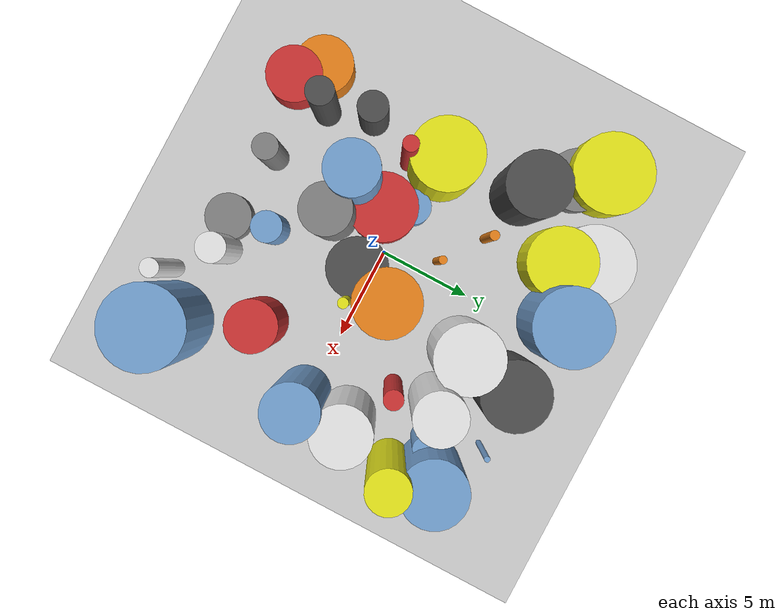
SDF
<?xml version='1.0'?>
<sdf version='1.6'>
  <world name='default'>
    <!-- Sun light -->
    <light name='sun' type='directional'>
      <cast_shadows>1</cast_shadows>
      <pose>0 0 10 0 0 0</pose>
      <diffuse>0.8 0.8 0.8 1</diffuse>
      <specular>0.2 0.2 0.2 1</specular>
      <attenuation>
        <range>1000</range>
        <constant>0.9</constant>
        <linear>0.01</linear>
        <quadratic>0.001</quadratic>
      </attenuation>
      <direction>-0.5 0.1 -0.9</direction>
    </light>

    <!-- Ground plane -->
    <model name='ground_plane'>
      <static>1</static>
      <link name='link'>
        <collision name='collision'>
          <geometry>
            <plane>
              <normal>0 0 1</normal>
              <size>100 100</size>
            </plane>
          </geometry>
          <surface>
            <contact>
              <collide_bitmask>65535</collide_bitmask>
              <ode/>
            </contact>
            <friction>
              <ode>
                <mu>100</mu>
                <mu2>50</mu2>
              </ode>
              <torsional><ode/></torsional>
            </friction>
            <bounce/>
          </surface>
          <max_contacts>10</max_contacts>
        </collision>
        <visual name='visual'>
          <cast_shadows>0</cast_shadows>
          <geometry>
            <plane>
              <normal>0 0 1</normal>
              <size>100 100</size>
            </plane>
          </geometry>
          <material>
            <script>
              <uri>file://media/materials/scripts/gazebo.material</uri>
              <n>Gazebo/Grey</n>
            </script>
          </material>
        </visual>
      </link>
    </model>

    <!-- Environment -->
    <magnetic_field>6e-06 2.3e-05 -4.2e-05</magnetic_field>
    <atmosphere type='adiabatic'/>
    <physics name='default_physics' default='0' type='ode'>
      <gravity>0 0 -9.8</gravity>
      <max_step_size>0.004</max_step_size>
      <real_time_factor>1</real_time_factor>
      <real_time_update_rate>250</real_time_update_rate>
    </physics>
    <scene>
      <ambient>0.4 0.4 0.4 1</ambient>
      <background>0.7 0.7 0.7 1</background>
      <shadows>1</shadows>
    </scene>
    <wind/>
    <spherical_coordinates>
      <surface_model>EARTH_WGS84</surface_model>
      <latitude_deg>0</latitude_deg>
      <longitude_deg>0</longitude_deg>
      <elevation>0</elevation>
      <heading_deg>0</heading_deg>
    </spherical_coordinates>

    <!-- ============ OBSTACLES (39) ============ -->
    <model name='obs_00'>
      <static>1</static>
      <link name='link'>
        <visual name='visual'>
          <geometry>
            <cylinder>
              <radius>0.7337</radius>
              <length>6.0355</length>
            </cylinder>
          </geometry>
          <material>
            <script>
              <n>Gazebo/DarkGrey</n>
              <uri>file://media/materials/scripts/gazebo.material</uri>
            </script>
            <ambient>0.3 0.3 0.3 1</ambient>
          </material>
        </visual>
        <collision name='collision'>
          <geometry>
            <cylinder>
              <radius>0.7337</radius>
              <length>6.0355</length>
            </cylinder>
          </geometry>
          <max_contacts>10</max_contacts>
          <surface>
            <contact><ode/></contact>
            <bounce/>
            <friction>
              <ode><mu>1</mu><mu2>1</mu2></ode>
              <torsional><ode/></torsional>
            </friction>
          </surface>
        </collision>
      </link>
      <pose>-5.2683 -6.2659 3.0178 0 0 2.7067</pose>
    </model>

    <model name='obs_01'>
      <static>1</static>
      <link name='link'>
        <visual name='visual'>
          <geometry>
            <cylinder>
              <radius>0.2784</radius>
              <length>5.8486</length>
            </cylinder>
          </geometry>
          <material>
            <script>
              <n>Gazebo/Yellow</n>
              <uri>file://media/materials/scripts/gazebo.material</uri>
            </script>
            <ambient>0.9 0.9 0.1 1</ambient>
          </material>
        </visual>
        <collision name='collision'>
          <geometry>
            <cylinder>
              <radius>0.2784</radius>
              <length>5.8486</length>
            </cylinder>
          </geometry>
          <max_contacts>10</max_contacts>
          <surface>
            <contact><ode/></contact>
            <bounce/>
            <friction>
              <ode><mu>1</mu><mu2>1</mu2></ode>
              <torsional><ode/></torsional>
            </friction>
          </surface>
        </collision>
      </link>
      <pose>3.1444 -0.5355 2.9243 0 0 3.0232</pose>
    </model>

    <model name='obs_02'>
      <static>1</static>
      <link name='link'>
        <visual name='visual'>
          <geometry>
            <cylinder>
              <radius>0.6801</radius>
              <length>4.6872</length>
            </cylinder>
          </geometry>
          <material>
            <script>
              <n>Gazebo/Grey</n>
              <uri>file://media/materials/scripts/gazebo.material</uri>
            </script>
            <ambient>0.5 0.5 0.5 1</ambient>
          </material>
        </visual>
        <collision name='collision'>
          <geometry>
            <cylinder>
              <radius>0.6801</radius>
              <length>4.6872</length>
            </cylinder>
          </geometry>
          <max_contacts>10</max_contacts>
          <surface>
            <contact><ode/></contact>
            <bounce/>
            <friction>
              <ode><mu>1</mu><mu2>1</mu2></ode>
              <torsional><ode/></torsional>
            </friction>
          </surface>
        </collision>
      </link>
      <pose>-1.7911 -7.5647 2.3436 0 0 0.7353</pose>
    </model>

    <model name='obs_03'>
      <static>1</static>
      <link name='link'>
        <visual name='visual'>
          <geometry>
            <cylinder>
              <radius>1.1398</radius>
              <length>7.4576</length>
            </cylinder>
          </geometry>
          <material>
            <script>
              <n>Gazebo/Yellow</n>
              <uri>file://media/materials/scripts/gazebo.material</uri>
            </script>
            <ambient>0.9 0.9 0.1 1</ambient>
          </material>
        </visual>
        <collision name='collision'>
          <geometry>
            <cylinder>
              <radius>1.1398</radius>
              <length>7.4576</length>
            </cylinder>
          </geometry>
          <max_contacts>10</max_contacts>
          <surface>
            <contact><ode/></contact>
            <bounce/>
            <friction>
              <ode><mu>1</mu><mu2>1</mu2></ode>
              <torsional><ode/></torsional>
            </friction>
          </surface>
        </collision>
      </link>
      <pose>9.7816 5.4586 3.7288 0 0 0.8431</pose>
    </model>

    <model name='obs_04'>
      <static>1</static>
      <link name='link'>
        <visual name='visual'>
          <geometry>
            <cylinder>
              <radius>0.1537</radius>
              <length>4.3478</length>
            </cylinder>
          </geometry>
          <material>
            <script>
              <n>Gazebo/Blue</n>
              <uri>file://media/materials/scripts/gazebo.material</uri>
            </script>
            <ambient>0.447 0.624 0.812 1</ambient>
          </material>
        </visual>
        <collision name='collision'>
          <geometry>
            <cylinder>
              <radius>0.1537</radius>
              <length>4.3478</length>
            </cylinder>
          </geometry>
          <max_contacts>10</max_contacts>
          <surface>
            <contact><ode/></contact>
            <bounce/>
            <friction>
              <ode><mu>1</mu><mu2>1</mu2></ode>
              <torsional><ode/></torsional>
            </friction>
          </surface>
        </collision>
      </link>
      <pose>6.6952 9.3565 2.1739 0 0 3.1303</pose>
    </model>

    <model name='obs_05'>
      <static>1</static>
      <link name='link'>
        <visual name='visual'>
          <geometry>
            <cylinder>
              <radius>1.7222</radius>
              <length>6.5273</length>
            </cylinder>
          </geometry>
          <material>
            <script>
              <n>Gazebo/Blue</n>
              <uri>file://media/materials/scripts/gazebo.material</uri>
            </script>
            <ambient>0.447 0.624 0.812 1</ambient>
          </material>
        </visual>
        <collision name='collision'>
          <geometry>
            <cylinder>
              <radius>1.7222</radius>
              <length>6.5273</length>
            </cylinder>
          </geometry>
          <max_contacts>10</max_contacts>
          <surface>
            <contact><ode/></contact>
            <bounce/>
            <friction>
              <ode><mu>1</mu><mu2>1</mu2></ode>
              <torsional><ode/></torsional>
            </friction>
          </surface>
        </collision>
      </link>
      <pose>9.0491 7.5343 3.2637 0 0 1.1561</pose>
    </model>

    <model name='obs_06'>
      <static>1</static>
      <link name='link'>
        <visual name='visual'>
          <geometry>
            <cylinder>
              <radius>1.6015</radius>
              <length>2.6330</length>
            </cylinder>
          </geometry>
          <material>
            <script>
              <n>Gazebo/Orange</n>
              <uri>file://media/materials/scripts/gazebo.material</uri>
            </script>
            <ambient>0.9 0.5 0.1 1</ambient>
          </material>
        </visual>
        <collision name='collision'>
          <geometry>
            <cylinder>
              <radius>1.6015</radius>
              <length>2.6330</length>
            </cylinder>
          </geometry>
          <max_contacts>10</max_contacts>
          <surface>
            <contact><ode/></contact>
            <bounce/>
            <friction>
              <ode><mu>1</mu><mu2>1</mu2></ode>
              <torsional><ode/></torsional>
            </friction>
          </surface>
        </collision>
      </link>
      <pose>-2.7695 9.6295 1.3165 0 0 1.9627</pose>
    </model>

    <model name='obs_07'>
      <static>1</static>
      <link name='link'>
        <visual name='visual'>
          <geometry>
            <cylinder>
              <radius>2.1067</radius>
              <length>2.9165</length>
            </cylinder>
          </geometry>
          <material>
            <script>
              <n>Gazebo/White</n>
              <uri>file://media/materials/scripts/gazebo.material</uri>
            </script>
            <ambient>0.9 0.9 0.9 1</ambient>
          </material>
        </visual>
        <collision name='collision'>
          <geometry>
            <cylinder>
              <radius>2.1067</radius>
              <length>2.9165</length>
            </cylinder>
          </geometry>
          <max_contacts>10</max_contacts>
          <surface>
            <contact><ode/></contact>
            <bounce/>
            <friction>
              <ode><mu>1</mu><mu2>1</mu2></ode>
              <torsional><ode/></torsional>
            </friction>
          </surface>
        </collision>
      </link>
      <pose>-4.4722 9.8789 1.4582 0 0 1.3938</pose>
    </model>

    <model name='obs_08'>
      <static>1</static>
      <link name='link'>
        <visual name='visual'>
          <geometry>
            <cylinder>
              <radius>0.2540</radius>
              <length>4.8624</length>
            </cylinder>
          </geometry>
          <material>
            <script>
              <n>Gazebo/Orange</n>
              <uri>file://media/materials/scripts/gazebo.material</uri>
            </script>
            <ambient>0.9 0.5 0.1 1</ambient>
          </material>
        </visual>
        <collision name='collision'>
          <geometry>
            <cylinder>
              <radius>0.2540</radius>
              <length>4.8624</length>
            </cylinder>
          </geometry>
          <max_contacts>10</max_contacts>
          <surface>
            <contact><ode/></contact>
            <bounce/>
            <friction>
              <ode><mu>1</mu><mu2>1</mu2></ode>
              <torsional><ode/></torsional>
            </friction>
          </surface>
        </collision>
      </link>
      <pose>-3.2155 4.4386 2.4312 0 0 0.3030</pose>
    </model>

    <model name='obs_09'>
      <static>1</static>
      <link name='link'>
        <visual name='visual'>
          <geometry>
            <cylinder>
              <radius>0.7888</radius>
              <length>4.9309</length>
            </cylinder>
          </geometry>
          <material>
            <script>
              <n>Gazebo/White</n>
              <uri>file://media/materials/scripts/gazebo.material</uri>
            </script>
            <ambient>0.9 0.9 0.9 1</ambient>
          </material>
        </visual>
        <collision name='collision'>
          <geometry>
            <cylinder>
              <radius>0.7888</radius>
              <length>4.9309</length>
            </cylinder>
          </geometry>
          <max_contacts>10</max_contacts>
          <surface>
            <contact><ode/></contact>
            <bounce/>
            <friction>
              <ode><mu>1</mu><mu2>1</mu2></ode>
              <torsional><ode/></torsional>
            </friction>
          </surface>
        </collision>
      </link>
      <pose>3.8336 -7.5626 2.4654 0 0 1.7327</pose>
    </model>

    <model name='obs_10'>
      <static>1</static>
      <link name='link'>
        <visual name='visual'>
          <geometry>
            <cylinder>
              <radius>0.8265</radius>
              <length>3.5689</length>
            </cylinder>
          </geometry>
          <material>
            <script>
              <n>Gazebo/Blue</n>
              <uri>file://media/materials/scripts/gazebo.material</uri>
            </script>
            <ambient>0.447 0.624 0.812 1</ambient>
          </material>
        </visual>
        <collision name='collision'>
          <geometry>
            <cylinder>
              <radius>0.8265</radius>
              <length>3.5689</length>
            </cylinder>
          </geometry>
          <max_contacts>10</max_contacts>
          <surface>
            <contact><ode/></contact>
            <bounce/>
            <friction>
              <ode><mu>1</mu><mu2>1</mu2></ode>
              <torsional><ode/></torsional>
            </friction>
          </surface>
        </collision>
      </link>
      <pose>1.6848 -5.8166 1.7844 0 0 0.2465</pose>
    </model>

    <model name='obs_11'>
      <static>1</static>
      <link name='link'>
        <visual name='visual'>
          <geometry>
            <cylinder>
              <radius>2.1743</radius>
              <length>6.5973</length>
            </cylinder>
          </geometry>
          <material>
            <script>
              <n>Gazebo/Blue</n>
              <uri>file://media/materials/scripts/gazebo.material</uri>
            </script>
            <ambient>0.447 0.624 0.812 1</ambient>
          </material>
        </visual>
        <collision name='collision'>
          <geometry>
            <cylinder>
              <radius>2.1743</radius>
              <length>6.5973</length>
            </cylinder>
          </geometry>
          <max_contacts>10</max_contacts>
          <surface>
            <contact><ode/></contact>
            <bounce/>
            <friction>
              <ode><mu>1</mu><mu2>1</mu2></ode>
              <torsional><ode/></torsional>
            </friction>
          </surface>
        </collision>
      </link>
      <pose>8.5865 -8.3595 3.2986 0 0 0.3864</pose>
    </model>

    <model name='obs_12'>
      <static>1</static>
      <link name='link'>
        <visual name='visual'>
          <geometry>
            <cylinder>
              <radius>1.4510</radius>
              <length>7.4970</length>
            </cylinder>
          </geometry>
          <material>
            <script>
              <n>Gazebo/Blue</n>
              <uri>file://media/materials/scripts/gazebo.material</uri>
            </script>
            <ambient>0.447 0.624 0.812 1</ambient>
          </material>
        </visual>
        <collision name='collision'>
          <geometry>
            <cylinder>
              <radius>1.4510</radius>
              <length>7.4970</length>
            </cylinder>
          </geometry>
          <max_contacts>10</max_contacts>
          <surface>
            <contact><ode/></contact>
            <bounce/>
            <friction>
              <ode><mu>1</mu><mu2>1</mu2></ode>
              <torsional><ode/></torsional>
            </friction>
          </surface>
        </collision>
      </link>
      <pose>8.6717 -0.2831 3.7485 0 0 2.2102</pose>
    </model>

    <model name='obs_13'>
      <static>1</static>
      <link name='link'>
        <visual name='visual'>
          <geometry>
            <cylinder>
              <radius>1.4074</radius>
              <length>6.9707</length>
            </cylinder>
          </geometry>
          <material>
            <script>
              <n>Gazebo/Blue</n>
              <uri>file://media/materials/scripts/gazebo.material</uri>
            </script>
            <ambient>0.447 0.624 0.812 1</ambient>
          </material>
        </visual>
        <collision name='collision'>
          <geometry>
            <cylinder>
              <radius>1.4074</radius>
              <length>6.9707</length>
            </cylinder>
          </geometry>
          <max_contacts>10</max_contacts>
          <surface>
            <contact><ode/></contact>
            <bounce/>
            <friction>
              <ode><mu>1</mu><mu2>1</mu2></ode>
              <torsional><ode/></torsional>
            </friction>
          </surface>
        </collision>
      </link>
      <pose>-2.6753 -3.1050 3.4854 0 0 0.6394</pose>
    </model>

    <model name='obs_14'>
      <static>1</static>
      <link name='link'>
        <visual name='visual'>
          <geometry>
            <cylinder>
              <radius>1.7676</radius>
              <length>6.6078</length>
            </cylinder>
          </geometry>
          <material>
            <script>
              <n>Gazebo/White</n>
              <uri>file://media/materials/scripts/gazebo.material</uri>
            </script>
            <ambient>0.9 0.9 0.9 1</ambient>
          </material>
        </visual>
        <collision name='collision'>
          <geometry>
            <cylinder>
              <radius>1.7676</radius>
              <length>6.6078</length>
            </cylinder>
          </geometry>
          <max_contacts>10</max_contacts>
          <surface>
            <contact><ode/></contact>
            <bounce/>
            <friction>
              <ode><mu>1</mu><mu2>1</mu2></ode>
              <torsional><ode/></torsional>
            </friction>
          </surface>
        </collision>
      </link>
      <pose>2.6477 6.0166 3.3039 0 0 0.5030</pose>
    </model>

    <model name='obs_15'>
      <static>1</static>
      <link name='link'>
        <visual name='visual'>
          <geometry>
            <cylinder>
              <radius>2.1623</radius>
              <length>2.6619</length>
            </cylinder>
          </geometry>
          <material>
            <script>
              <n>Gazebo/Yellow</n>
              <uri>file://media/materials/scripts/gazebo.material</uri>
            </script>
            <ambient>0.9 0.9 0.1 1</ambient>
          </material>
        </visual>
        <collision name='collision'>
          <geometry>
            <cylinder>
              <radius>2.1623</radius>
              <length>2.6619</length>
            </cylinder>
          </geometry>
          <max_contacts>10</max_contacts>
          <surface>
            <contact><ode/></contact>
            <bounce/>
            <friction>
              <ode><mu>1</mu><mu2>1</mu2></ode>
              <torsional><ode/></torsional>
            </friction>
          </surface>
        </collision>
      </link>
      <pose>-9.1219 8.5554 1.3310 0 0 1.3248</pose>
    </model>

    <model name='obs_16'>
      <static>1</static>
      <link name='link'>
        <visual name='visual'>
          <geometry>
            <cylinder>
              <radius>1.3356</radius>
              <length>7.8458</length>
            </cylinder>
          </geometry>
          <material>
            <script>
              <n>Gazebo/White</n>
              <uri>file://media/materials/scripts/gazebo.material</uri>
            </script>
            <ambient>0.9 0.9 0.9 1</ambient>
          </material>
        </visual>
        <collision name='collision'>
          <geometry>
            <cylinder>
              <radius>1.3356</radius>
              <length>7.8458</length>
            </cylinder>
          </geometry>
          <max_contacts>10</max_contacts>
          <surface>
            <contact><ode/></contact>
            <bounce/>
            <friction>
              <ode><mu>1</mu><mu2>1</mu2></ode>
              <torsional><ode/></torsional>
            </friction>
          </surface>
        </collision>
      </link>
      <pose>5.6250 5.9732 3.9229 0 0 1.5834</pose>
    </model>

    <model name='obs_17'>
      <static>1</static>
      <link name='link'>
        <visual name='visual'>
          <geometry>
            <cylinder>
              <radius>1.6929</radius>
              <length>1.3691</length>
            </cylinder>
          </geometry>
          <material>
            <script>
              <n>Gazebo/Grey</n>
              <uri>file://media/materials/scripts/gazebo.material</uri>
            </script>
            <ambient>0.5 0.5 0.5 1</ambient>
          </material>
        </visual>
        <collision name='collision'>
          <geometry>
            <cylinder>
              <radius>1.6929</radius>
              <length>1.3691</length>
            </cylinder>
          </geometry>
          <max_contacts>10</max_contacts>
          <surface>
            <contact><ode/></contact>
            <bounce/>
            <friction>
              <ode><mu>1</mu><mu2>1</mu2></ode>
              <torsional><ode/></torsional>
            </friction>
          </surface>
        </collision>
      </link>
      <pose>-8.1907 7.2563 0.6846 0 0 1.8540</pose>
    </model>

    <model name='obs_18'>
      <static>1</static>
      <link name='link'>
        <visual name='visual'>
          <geometry>
            <cylinder>
              <radius>1.8726</radius>
              <length>3.3443</length>
            </cylinder>
          </geometry>
          <material>
            <script>
              <n>Gazebo/Yellow</n>
              <uri>file://media/materials/scripts/gazebo.material</uri>
            </script>
            <ambient>0.9 0.9 0.1 1</ambient>
          </material>
        </visual>
        <collision name='collision'>
          <geometry>
            <cylinder>
              <radius>1.8726</radius>
              <length>3.3443</length>
            </cylinder>
          </geometry>
          <max_contacts>10</max_contacts>
          <surface>
            <contact><ode/></contact>
            <bounce/>
            <friction>
              <ode><mu>1</mu><mu2>1</mu2></ode>
              <torsional><ode/></torsional>
            </friction>
          </surface>
        </collision>
      </link>
      <pose>-3.7592 8.2665 1.6722 0 0 1.7623</pose>
    </model>

    <model name='obs_19'>
      <static>1</static>
      <link name='link'>
        <visual name='visual'>
          <geometry>
            <cylinder>
              <radius>0.5049</radius>
              <length>6.4687</length>
            </cylinder>
          </geometry>
          <material>
            <script>
              <n>Gazebo/Red</n>
              <uri>file://media/materials/scripts/gazebo.material</uri>
            </script>
            <ambient>0.8 0.2 0.2 1</ambient>
          </material>
        </visual>
        <collision name='collision'>
          <geometry>
            <cylinder>
              <radius>0.5049</radius>
              <length>6.4687</length>
            </cylinder>
          </geometry>
          <max_contacts>10</max_contacts>
          <surface>
            <contact><ode/></contact>
            <bounce/>
            <friction>
              <ode><mu>1</mu><mu2>1</mu2></ode>
              <torsional><ode/></torsional>
            </friction>
          </surface>
        </collision>
      </link>
      <pose>6.0280 3.7419 3.2343 0 0 0.4637</pose>
    </model>

    <model name='obs_20'>
      <static>1</static>
      <link name='link'>
        <visual name='visual'>
          <geometry>
            <cylinder>
              <radius>0.8102</radius>
              <length>4.4297</length>
            </cylinder>
          </geometry>
          <material>
            <script>
              <n>Gazebo/DarkGrey</n>
              <uri>file://media/materials/scripts/gazebo.material</uri>
            </script>
            <ambient>0.3 0.3 0.3 1</ambient>
          </material>
        </visual>
        <collision name='collision'>
          <geometry>
            <cylinder>
              <radius>0.8102</radius>
              <length>4.4297</length>
            </cylinder>
          </geometry>
          <max_contacts>10</max_contacts>
          <surface>
            <contact><ode/></contact>
            <bounce/>
            <friction>
              <ode><mu>1</mu><mu2>1</mu2></ode>
              <torsional><ode/></torsional>
            </friction>
          </surface>
        </collision>
      </link>
      <pose>-6.0554 -3.8326 2.2148 0 0 1.5186</pose>
    </model>

    <model name='obs_21'>
      <static>1</static>
      <link name='link'>
        <visual name='visual'>
          <geometry>
            <cylinder>
              <radius>1.5041</radius>
              <length>2.1348</length>
            </cylinder>
          </geometry>
          <material>
            <script>
              <n>Gazebo/Red</n>
              <uri>file://media/materials/scripts/gazebo.material</uri>
            </script>
            <ambient>0.8 0.2 0.2 1</ambient>
          </material>
        </visual>
        <collision name='collision'>
          <geometry>
            <cylinder>
              <radius>1.5041</radius>
              <length>2.1348</length>
            </cylinder>
          </geometry>
          <max_contacts>10</max_contacts>
          <surface>
            <contact><ode/></contact>
            <bounce/>
            <friction>
              <ode><mu>1</mu><mu2>1</mu2></ode>
              <torsional><ode/></torsional>
            </friction>
          </surface>
        </collision>
      </link>
      <pose>-5.9799 -8.4881 1.0674 0 0 0.6395</pose>
    </model>

    <model name='obs_22'>
      <static>1</static>
      <link name='link'>
        <visual name='visual'>
          <geometry>
            <cylinder>
              <radius>1.6952</radius>
              <length>7.2968</length>
            </cylinder>
          </geometry>
          <material>
            <script>
              <n>Gazebo/Orange</n>
              <uri>file://media/materials/scripts/gazebo.material</uri>
            </script>
            <ambient>0.9 0.5 0.1 1</ambient>
          </material>
        </visual>
        <collision name='collision'>
          <geometry>
            <cylinder>
              <radius>1.6952</radius>
              <length>7.2968</length>
            </cylinder>
          </geometry>
          <max_contacts>10</max_contacts>
          <surface>
            <contact><ode/></contact>
            <bounce/>
            <friction>
              <ode><mu>1</mu><mu2>1</mu2></ode>
              <torsional><ode/></torsional>
            </friction>
          </surface>
        </collision>
      </link>
      <pose>2.1225 1.3176 3.6484 0 0 0.4976</pose>
    </model>

    <model name='obs_23'>
      <static>1</static>
      <link name='link'>
        <visual name='visual'>
          <geometry>
            <cylinder>
              <radius>2.0358</radius>
              <length>5.3733</length>
            </cylinder>
          </geometry>
          <material>
            <script>
              <n>Gazebo/Blue</n>
              <uri>file://media/materials/scripts/gazebo.material</uri>
            </script>
            <ambient>0.447 0.624 0.812 1</ambient>
          </material>
        </visual>
        <collision name='collision'>
          <geometry>
            <cylinder>
              <radius>2.0358</radius>
              <length>5.3733</length>
            </cylinder>
          </geometry>
          <max_contacts>10</max_contacts>
          <surface>
            <contact><ode/></contact>
            <bounce/>
            <friction>
              <ode><mu>1</mu><mu2>1</mu2></ode>
              <torsional><ode/></torsional>
            </friction>
          </surface>
        </collision>
      </link>
      <pose>-1.0223 9.8680 2.6867 0 0 2.4724</pose>
    </model>

    <model name='obs_24'>
      <static>1</static>
      <link name='link'>
        <visual name='visual'>
          <geometry>
            <cylinder>
              <radius>1.5519</radius>
              <length>6.8905</length>
            </cylinder>
          </geometry>
          <material>
            <script>
              <n>Gazebo/White</n>
              <uri>file://media/materials/scripts/gazebo.material</uri>
            </script>
            <ambient>0.9 0.9 0.9 1</ambient>
          </material>
        </visual>
        <collision name='collision'>
          <geometry>
            <cylinder>
              <radius>1.5519</radius>
              <length>6.8905</length>
            </cylinder>
          </geometry>
          <max_contacts>10</max_contacts>
          <surface>
            <contact><ode/></contact>
            <bounce/>
            <friction>
              <ode><mu>1</mu><mu2>1</mu2></ode>
              <torsional><ode/></torsional>
            </friction>
          </surface>
        </collision>
      </link>
      <pose>8.6498 2.3346 3.4452 0 0 1.1219</pose>
    </model>

    <model name='obs_25'>
      <static>1</static>
      <link name='link'>
        <visual name='visual'>
          <geometry>
            <cylinder>
              <radius>0.2103</radius>
              <length>6.1343</length>
            </cylinder>
          </geometry>
          <material>
            <script>
              <n>Gazebo/Orange</n>
              <uri>file://media/materials/scripts/gazebo.material</uri>
            </script>
            <ambient>0.9 0.5 0.1 1</ambient>
          </material>
        </visual>
        <collision name='collision'>
          <geometry>
            <cylinder>
              <radius>0.2103</radius>
              <length>6.1343</length>
            </cylinder>
          </geometry>
          <max_contacts>10</max_contacts>
          <surface>
            <contact><ode/></contact>
            <bounce/>
            <friction>
              <ode><mu>1</mu><mu2>1</mu2></ode>
              <torsional><ode/></torsional>
            </friction>
          </surface>
        </collision>
      </link>
      <pose>-0.9133 2.7067 3.0672 0 0 1.3591</pose>
    </model>

    <model name='obs_26'>
      <static>1</static>
      <link name='link'>
        <visual name='visual'>
          <geometry>
            <cylinder>
              <radius>1.7996</radius>
              <length>5.4380</length>
            </cylinder>
          </geometry>
          <material>
            <script>
              <n>Gazebo/DarkGrey</n>
              <uri>file://media/materials/scripts/gazebo.material</uri>
            </script>
            <ambient>0.3 0.3 0.3 1</ambient>
          </material>
        </visual>
        <collision name='collision'>
          <geometry>
            <cylinder>
              <radius>1.7996</radius>
              <length>5.4380</length>
            </cylinder>
          </geometry>
          <max_contacts>10</max_contacts>
          <surface>
            <contact><ode/></contact>
            <bounce/>
            <friction>
              <ode><mu>1</mu><mu2>1</mu2></ode>
              <torsional><ode/></torsional>
            </friction>
          </surface>
        </collision>
      </link>
      <pose>3.2130 8.9735 2.7190 0 0 2.5231</pose>
    </model>

    <model name='obs_27'>
      <static>1</static>
      <link name='link'>
        <visual name='visual'>
          <geometry>
            <cylinder>
              <radius>1.8525</radius>
              <length>2.3236</length>
            </cylinder>
          </geometry>
          <material>
            <script>
              <n>Gazebo/Red</n>
              <uri>file://media/materials/scripts/gazebo.material</uri>
            </script>
            <ambient>0.8 0.2 0.2 1</ambient>
          </material>
        </visual>
        <collision name='collision'>
          <geometry>
            <cylinder>
              <radius>1.8525</radius>
              <length>2.3236</length>
            </cylinder>
          </geometry>
          <max_contacts>10</max_contacts>
          <surface>
            <contact><ode/></contact>
            <bounce/>
            <friction>
              <ode><mu>1</mu><mu2>1</mu2></ode>
              <torsional><ode/></torsional>
            </friction>
          </surface>
        </collision>
      </link>
      <pose>-2.0388 -1.1311 1.1618 0 0 1.2494</pose>
    </model>

    <model name='obs_28'>
      <static>1</static>
      <link name='link'>
        <visual name='visual'>
          <geometry>
            <cylinder>
              <radius>0.4009</radius>
              <length>7.7883</length>
            </cylinder>
          </geometry>
          <material>
            <script>
              <n>Gazebo/Red</n>
              <uri>file://media/materials/scripts/gazebo.material</uri>
            </script>
            <ambient>0.8 0.2 0.2 1</ambient>
          </material>
        </visual>
        <collision name='collision'>
          <geometry>
            <cylinder>
              <radius>0.4009</radius>
              <length>7.7883</length>
            </cylinder>
          </geometry>
          <max_contacts>10</max_contacts>
          <surface>
            <contact><ode/></contact>
            <bounce/>
            <friction>
              <ode><mu>1</mu><mu2>1</mu2></ode>
              <torsional><ode/></torsional>
            </friction>
          </surface>
        </collision>
      </link>
      <pose>-4.8607 -1.1570 3.8941 0 0 1.1643</pose>
    </model>

    <model name='obs_29'>
      <static>1</static>
      <link name='link'>
        <visual name='visual'>
          <geometry>
            <cylinder>
              <radius>1.3626</radius>
              <length>4.6908</length>
            </cylinder>
          </geometry>
          <material>
            <script>
              <n>Gazebo/Red</n>
              <uri>file://media/materials/scripts/gazebo.material</uri>
            </script>
            <ambient>0.8 0.2 0.2 1</ambient>
          </material>
        </visual>
        <collision name='collision'>
          <geometry>
            <cylinder>
              <radius>1.3626</radius>
              <length>4.6908</length>
            </cylinder>
          </geometry>
          <max_contacts>10</max_contacts>
          <surface>
            <contact><ode/></contact>
            <bounce/>
            <friction>
              <ode><mu>1</mu><mu2>1</mu2></ode>
              <torsional><ode/></torsional>
            </friction>
          </surface>
        </collision>
      </link>
      <pose>6.3515 -4.0304 2.3454 0 0 3.0350</pose>
    </model>

    <model name='obs_30'>
      <static>1</static>
      <link name='link'>
        <visual name='visual'>
          <geometry>
            <cylinder>
              <radius>1.6413</radius>
              <length>6.7130</length>
            </cylinder>
          </geometry>
          <material>
            <script>
              <n>Gazebo/DarkGrey</n>
              <uri>file://media/materials/scripts/gazebo.material</uri>
            </script>
            <ambient>0.3 0.3 0.3 1</ambient>
          </material>
        </visual>
        <collision name='collision'>
          <geometry>
            <cylinder>
              <radius>1.6413</radius>
              <length>6.7130</length>
            </cylinder>
          </geometry>
          <max_contacts>10</max_contacts>
          <surface>
            <contact><ode/></contact>
            <bounce/>
            <friction>
              <ode><mu>1</mu><mu2>1</mu2></ode>
              <torsional><ode/></torsional>
            </friction>
          </surface>
        </collision>
      </link>
      <pose>-6.1655 5.0280 3.3565 0 0 0.4366</pose>
    </model>

    <model name='obs_31'>
      <static>1</static>
      <link name='link'>
        <visual name='visual'>
          <geometry>
            <cylinder>
              <radius>0.4891</radius>
              <length>5.4963</length>
            </cylinder>
          </geometry>
          <material>
            <script>
              <n>Gazebo/White</n>
              <uri>file://media/materials/scripts/gazebo.material</uri>
            </script>
            <ambient>0.9 0.9 0.9 1</ambient>
          </material>
        </visual>
        <collision name='collision'>
          <geometry>
            <cylinder>
              <radius>0.4891</radius>
              <length>5.4963</length>
            </cylinder>
          </geometry>
          <max_contacts>10</max_contacts>
          <surface>
            <contact><ode/></contact>
            <bounce/>
            <friction>
              <ode><mu>1</mu><mu2>1</mu2></ode>
              <torsional><ode/></torsional>
            </friction>
          </surface>
        </collision>
      </link>
      <pose>6.0494 -9.5989 2.7482 0 0 0.3841</pose>
    </model>

    <model name='obs_32'>
      <static>1</static>
      <link name='link'>
        <visual name='visual'>
          <geometry>
            <cylinder>
              <radius>1.6532</radius>
              <length>2.5521</length>
            </cylinder>
          </geometry>
          <material>
            <script>
              <n>Gazebo/DarkGrey</n>
              <uri>file://media/materials/scripts/gazebo.material</uri>
            </script>
            <ambient>0.3 0.3 0.3 1</ambient>
          </material>
        </visual>
        <collision name='collision'>
          <geometry>
            <cylinder>
              <radius>1.6532</radius>
              <length>2.5521</length>
            </cylinder>
          </geometry>
          <max_contacts>10</max_contacts>
          <surface>
            <contact><ode/></contact>
            <bounce/>
            <friction>
              <ode><mu>1</mu><mu2>1</mu2></ode>
              <torsional><ode/></torsional>
            </friction>
          </surface>
        </collision>
      </link>
      <pose>1.3942 -0.8247 1.2760 0 0 2.5830</pose>
    </model>

    <model name='obs_33'>
      <static>1</static>
      <link name='link'>
        <visual name='visual'>
          <geometry>
            <cylinder>
              <radius>1.8573</radius>
              <length>5.9527</length>
            </cylinder>
          </geometry>
          <material>
            <script>
              <n>Gazebo/Yellow</n>
              <uri>file://media/materials/scripts/gazebo.material</uri>
            </script>
            <ambient>0.9 0.9 0.1 1</ambient>
          </material>
        </visual>
        <collision name='collision'>
          <geometry>
            <cylinder>
              <radius>1.8573</radius>
              <length>5.9527</length>
            </cylinder>
          </geometry>
          <max_contacts>10</max_contacts>
          <surface>
            <contact><ode/></contact>
            <bounce/>
            <friction>
              <ode><mu>1</mu><mu2>1</mu2></ode>
              <torsional><ode/></torsional>
            </friction>
          </surface>
        </collision>
      </link>
      <pose>-5.5112 0.5477 2.9763 0 0 1.5113</pose>
    </model>

    <model name='obs_34'>
      <static>1</static>
      <link name='link'>
        <visual name='visual'>
          <geometry>
            <cylinder>
              <radius>1.2640</radius>
              <length>1.1836</length>
            </cylinder>
          </geometry>
          <material>
            <script>
              <n>Gazebo/Grey</n>
              <uri>file://media/materials/scripts/gazebo.material</uri>
            </script>
            <ambient>0.5 0.5 0.5 1</ambient>
          </material>
        </visual>
        <collision name='collision'>
          <geometry>
            <cylinder>
              <radius>1.2640</radius>
              <length>1.1836</length>
            </cylinder>
          </geometry>
          <max_contacts>10</max_contacts>
          <surface>
            <contact><ode/></contact>
            <bounce/>
            <friction>
              <ode><mu>1</mu><mu2>1</mu2></ode>
              <torsional><ode/></torsional>
            </friction>
          </surface>
        </collision>
      </link>
      <pose>2.2058 -8.1961 0.5918 0 0 0.9514</pose>
    </model>

    <model name='obs_35'>
      <static>1</static>
      <link name='link'>
        <visual name='visual'>
          <geometry>
            <cylinder>
              <radius>1.5635</radius>
              <length>2.0117</length>
            </cylinder>
          </geometry>
          <material>
            <script>
              <n>Gazebo/Orange</n>
              <uri>file://media/materials/scripts/gazebo.material</uri>
            </script>
            <ambient>0.9 0.5 0.1 1</ambient>
          </material>
        </visual>
        <collision name='collision'>
          <geometry>
            <cylinder>
              <radius>1.5635</radius>
              <length>2.0117</length>
            </cylinder>
          </geometry>
          <max_contacts>10</max_contacts>
          <surface>
            <contact><ode/></contact>
            <bounce/>
            <friction>
              <ode><mu>1</mu><mu2>1</mu2></ode>
              <torsional><ode/></torsional>
            </friction>
          </surface>
        </collision>
      </link>
      <pose>-7.1645 -7.3440 1.0059 0 0 0.2503</pose>
    </model>

    <model name='obs_36'>
      <static>1</static>
      <link name='link'>
        <visual name='visual'>
          <geometry>
            <cylinder>
              <radius>0.5830</radius>
              <length>3.8166</length>
            </cylinder>
          </geometry>
          <material>
            <script>
              <n>Gazebo/Blue</n>
              <uri>file://media/materials/scripts/gazebo.material</uri>
            </script>
            <ambient>0.447 0.624 0.812 1</ambient>
          </material>
        </visual>
        <collision name='collision'>
          <geometry>
            <cylinder>
              <radius>0.5830</radius>
              <length>3.8166</length>
            </cylinder>
          </geometry>
          <max_contacts>10</max_contacts>
          <surface>
            <contact><ode/></contact>
            <bounce/>
            <friction>
              <ode><mu>1</mu><mu2>1</mu2></ode>
              <torsional><ode/></torsional>
            </friction>
          </surface>
        </collision>
      </link>
      <pose>7.7964 6.4111 1.9083 0 0 1.3897</pose>
    </model>

    <model name='obs_37'>
      <static>1</static>
      <link name='link'>
        <visual name='visual'>
          <geometry>
            <cylinder>
              <radius>1.3277</radius>
              <length>6.2387</length>
            </cylinder>
          </geometry>
          <material>
            <script>
              <n>Gazebo/Grey</n>
              <uri>file://media/materials/scripts/gazebo.material</uri>
            </script>
            <ambient>0.5 0.5 0.5 1</ambient>
          </material>
        </visual>
        <collision name='collision'>
          <geometry>
            <cylinder>
              <radius>1.3277</radius>
              <length>6.2387</length>
            </cylinder>
          </geometry>
          <max_contacts>10</max_contacts>
          <surface>
            <contact><ode/></contact>
            <bounce/>
            <friction>
              <ode><mu>1</mu><mu2>1</mu2></ode>
              <torsional><ode/></torsional>
            </friction>
          </surface>
        </collision>
      </link>
      <pose>-0.4325 -3.3578 3.1194 0 0 2.4404</pose>
    </model>

    <model name='obs_38'>
      <static>1</static>
      <link name='link'>
        <visual name='visual'>
          <geometry>
            <cylinder>
              <radius>0.9397</radius>
              <length>1.6897</length>
            </cylinder>
          </geometry>
          <material>
            <script>
              <n>Gazebo/Blue</n>
              <uri>file://media/materials/scripts/gazebo.material</uri>
            </script>
            <ambient>0.447 0.624 0.812 1</ambient>
          </material>
        </visual>
        <collision name='collision'>
          <geometry>
            <cylinder>
              <radius>0.9397</radius>
              <length>1.6897</length>
            </cylinder>
          </geometry>
          <max_contacts>10</max_contacts>
          <surface>
            <contact><ode/></contact>
            <bounce/>
            <friction>
              <ode><mu>1</mu><mu2>1</mu2></ode>
              <torsional><ode/></torsional>
            </friction>
          </surface>
        </collision>
      </link>
      <pose>-2.8220 0.2548 0.8448 0 0 0.0100</pose>
    </model>

    <!-- GUI camera -->
    <gui fullscreen='0'>
      <camera name='user_camera'>
        <pose>-15 0 18 0 0.85 0.15</pose>
        <view_controller>orbit</view_controller>
        <projection_type>perspective</projection_type>
      </camera>
    </gui>
  </world>
</sdf>
